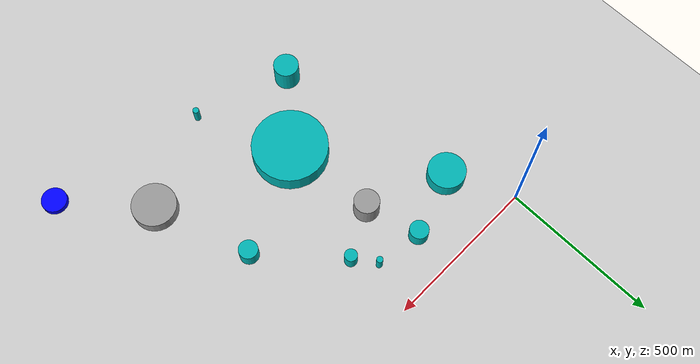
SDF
<sdf version="1.5">
 <world name="default">
  <physics type="ode">
   <ode>
    <solver><type>quick</type><iters>100</iters><sor>1.0</sor></solver>
    <constraints>
     <cfm>0.0</cfm>
     <erp>0.9</erp>
     <contact_max_correcting_vel>0.1</contact_max_correcting_vel>
     <contact_surface_layer>0.0</contact_surface_layer>
    </constraints>
   </ode>
   <real_time_update_rate>1000</real_time_update_rate>
   <max_step_size>0.0010</max_step_size>
  </physics>
  <scene>
   <sky><clouds><speed>12</speed></clouds></sky>
   <ambient>0.4 0.4 0.4 1</ambient>
   <background>0.25 0.25 0.25 1</background>
  </scene>
  <model name="ground_plane">
   <static>true</static>
   <link name="link">
    <collision name="collision">
     <geometry><plane><normal>0 0 1</normal><size>5000 5000</size></plane></geometry>
     <surface><friction><ode><mu>1</mu><mu2>1</mu2></ode></friction></surface>
    </collision>
    <visual name="runway">
     <pose>000 0 0.005 0 0 0</pose>
     <cast_shadows>false</cast_shadows>
     <geometry><plane><normal>0 0 1</normal><size>1829 45</size></plane></geometry>
     <material>
      <script><uri>file://media/materials/scripts/gazebo.material</uri><name>Gazebo/Runway</name></script>
     </material>
    </visual>
    <visual name="grass">
     <pose>0 0 -0.1 0 0 0</pose>
     <cast_shadows>false</cast_shadows>
     <geometry><plane><normal>0 0 1</normal><size>5000 5000</size></plane></geometry>
     <material>
      <script><uri>file://media/materials/scripts/gazebo.material</uri><name>Gazebo/Grass</name></script>
     </material>
    </visual>
   </link>
  </model>
  <include><uri>model://sun</uri></include>
  <model name="Obstacles">
   <static>true</static>
   <link name="Goal">
    <pose>1000 -1000 10 0 -0 0</pose>
    <collision name="collision">
     <geometry><cylinder><radius>40</radius><length>20</length></cylinder></geometry>
     <surface><friction><ode><mu>1</mu><mu2>1</mu2></ode></friction></surface>
    </collision>
    <visual name="visual">
     <geometry><cylinder><radius>40</radius><length>20</length></cylinder></geometry>
     <material>
      <lighting>1</lighting>
      <script><uri>file://media/materials/scripts/gazebo.material</uri><name>Gazebo/Grey</name></script>
      <shader type="pixel"><normal_map>__default__</normal_map></shader>
      <ambient>0.3 0.3 0.3 1</ambient>
      <diffuse>0 0.0 1.0 1</diffuse>
      <specular>0.01 0.01 0.01 1</specular>
      <emissive>0 0 0 1</emissive>
     </material>
    </visual>
   </link>
   <link name="Obs1">
    <pose>350 -300 37.5 0 -0 0</pose>
    <collision name="collision">
     <geometry><cylinder><radius>40</radius><length>75</length></cylinder></geometry>
     <surface><friction><ode><mu>1</mu><mu2>1</mu2></ode></friction></surface>
    </collision>
    <visual name="visual">
     <geometry><cylinder><radius>40</radius><length>75</length></cylinder></geometry>
     <material>
      <lighting>1</lighting>
      <script><uri>file://media/materials/scripts/gazebo.material</uri><name>Gazebo/Grey</name></script>
      <shader type="pixel"><normal_map>__default__</normal_map></shader>
      <ambient>0.3 0.3 0.3 1</ambient>
      <diffuse>0.7 0.7 0.7 1</diffuse>
      <specular>0.01 0.01 0.01 1</specular>
      <emissive>0 0 0 1</emissive>
     </material>
    </visual>
   </link>
   <link name="Obs2">
    <pose>100 -200 27.5 0 -0 0</pose>
    <collision name="collision">
     <geometry><cylinder><radius>60</radius><length>55</length></cylinder></geometry>
     <surface><friction><ode><mu>1</mu><mu2>1</mu2></ode></friction></surface>
    </collision>
    <visual name="visual">
     <geometry><cylinder><radius>60</radius><length>55</length></cylinder></geometry>
     <material>
      <lighting>1</lighting>
      <script><uri>file://media/materials/scripts/gazebo.material</uri><name>Gazebo/Grey</name></script>
      <shader type="pixel"><normal_map>__default__</normal_map></shader>
      <ambient>0.3 0.3 0.3 1</ambient>
      <diffuse>0 0.7 0.7 1</diffuse>
      <specular>0.01 0.01 0.01 1</specular>
      <emissive>0 0 0 1</emissive>
     </material>
    </visual>
   </link>
   <link name="Obs3">
    <pose>300 -130 27.5 0 -0 0</pose>
    <collision name="collision">
     <geometry><cylinder><radius>30</radius><length>55</length></cylinder></geometry>
     <surface><friction><ode><mu>1</mu><mu2>1</mu2></ode></friction></surface>
    </collision>
    <visual name="visual">
     <geometry><cylinder><radius>30</radius><length>55</length></cylinder></geometry>
     <material>
      <lighting>1</lighting>
      <script><uri>file://media/materials/scripts/gazebo.material</uri><name>Gazebo/Grey</name></script>
      <shader type="pixel"><normal_map>__default__</normal_map></shader>
      <ambient>0.3 0.3 0.3 1</ambient>
      <diffuse>0 0.7 0.7 1</diffuse>
      <specular>0.01 0.01 0.01 1</specular>
      <emissive>0 0 0 1</emissive>
     </material>
    </visual>
   </link>
   <link name="Obs4">
    <pose>500 -220 27.5 0 -0 0</pose>
    <collision name="collision">
     <geometry><cylinder><radius>20</radius><length>55</length></cylinder></geometry>
     <surface><friction><ode><mu>1</mu><mu2>1</mu2></ode></friction></surface>
    </collision>
    <visual name="visual">
     <geometry><cylinder><radius>20</radius><length>55</length></cylinder></geometry>
     <material>
      <lighting>1</lighting>
      <script><uri>file://media/materials/scripts/gazebo.material</uri><name>Gazebo/Grey</name></script>
      <shader type="pixel"><normal_map>__default__</normal_map></shader>
      <ambient>0.3 0.3 0.3 1</ambient>
      <diffuse>0 0.7 0.7 1</diffuse>
      <specular>0.01 0.01 0.01 1</specular>
      <emissive>0 0 0 1</emissive>
     </material>
    </visual>
   </link>
   <link name="Obs5">
    <pose>450 -150 27.5 0 -0 0</pose>
    <collision name="collision">
     <geometry><cylinder><radius>10</radius><length>55</length></cylinder></geometry>
     <surface><friction><ode><mu>1</mu><mu2>1</mu2></ode></friction></surface>
    </collision>
    <visual name="visual">
     <geometry><cylinder><radius>10</radius><length>55</length></cylinder></geometry>
     <material>
      <lighting>1</lighting>
      <script><uri>file://media/materials/scripts/gazebo.material</uri><name>Gazebo/Grey</name></script>
      <shader type="pixel"><normal_map>__default__</normal_map></shader>
      <ambient>0.3 0.3 0.3 1</ambient>
      <diffuse>0 0.7 0.7 1</diffuse>
      <specular>0.01 0.01 0.01 1</specular>
      <emissive>0 0 0 1</emissive>
     </material>
    </visual>
   </link>
   <link name="Obs6">
    <pose>800 -760 22.5 0 -0 0</pose>
    <collision name="collision">
     <geometry><cylinder><radius>70</radius><length>45</length></cylinder></geometry>
     <surface><friction><ode><mu>1</mu><mu2>1</mu2></ode></friction></surface>
    </collision>
    <visual name="visual">
     <geometry><cylinder><radius>70</radius><length>45</length></cylinder></geometry>
     <material>
      <lighting>1</lighting>
      <script><uri>file://media/materials/scripts/gazebo.material</uri><name>Gazebo/Grey</name></script>
      <shader type="pixel"><normal_map>__default__</normal_map></shader>
      <ambient>0.3 0.3 0.3 1</ambient>
      <diffuse>0.7 0.7 0.7 1</diffuse>
      <specular>0.01 0.01 0.01 1</specular>
      <emissive>0 0 0 1</emissive>
     </material>
    </visual>
   </link>
   <link name="Obs7">
    <pose>500 -900 27.5 0 -0 0</pose>
    <collision name="collision">
     <geometry><cylinder><radius>10</radius><length>55</length></cylinder></geometry>
     <surface><friction><ode><mu>1</mu><mu2>1</mu2></ode></friction></surface>
    </collision>
    <visual name="visual">
     <geometry><cylinder><radius>10</radius><length>55</length></cylinder></geometry>
     <material>
      <lighting>1</lighting>
      <script><uri>file://media/materials/scripts/gazebo.material</uri><name>Gazebo/Grey</name></script>
      <shader type="pixel"><normal_map>__default__</normal_map></shader>
      <ambient>0.3 0.3 0.3 1</ambient>
      <diffuse>0 0.7 0.7 1</diffuse>
      <specular>0.01 0.01 0.01 1</specular>
      <emissive>0 0 0 1</emissive>
     </material>
    </visual>
   </link>
   <link name="Obs8">
    <pose>380 -600 32.5 0 -0 0</pose>
    <collision name="collision">
     <geometry><cylinder><radius>120</radius><length>65</length></cylinder></geometry>
     <surface><friction><ode><mu>1</mu><mu2>1</mu2></ode></friction></surface>
    </collision>
    <visual name="visual">
     <geometry><cylinder><radius>120</radius><length>65</length></cylinder></geometry>
     <material>
      <lighting>1</lighting>
      <script><uri>file://media/materials/scripts/gazebo.material</uri><name>Gazebo/Grey</name></script>
      <shader type="pixel"><normal_map>__default__</normal_map></shader>
      <ambient>0.3 0.3 0.3 1</ambient>
      <diffuse>0 0.7 0.7 1</diffuse>
      <specular>0.01 0.01 0.01 1</specular>
      <emissive>0 0 0 1</emissive>
     </material>
    </visual>
   </link>
   <link name="Obs9">
    <pose>700 -450 27.5 0 -0 0</pose>
    <collision name="collision">
     <geometry><cylinder><radius>30</radius><length>55</length></cylinder></geometry>
     <surface><friction><ode><mu>1</mu><mu2>1</mu2></ode></friction></surface>
    </collision>
    <visual name="visual">
     <geometry><cylinder><radius>30</radius><length>55</length></cylinder></geometry>
     <material>
      <lighting>1</lighting>
      <script><uri>file://media/materials/scripts/gazebo.material</uri><name>Gazebo/Grey</name></script>
      <shader type="pixel"><normal_map>__default__</normal_map></shader>
      <ambient>0.3 0.3 0.3 1</ambient>
      <diffuse>0 0.7 0.7 1</diffuse>
      <specular>0.01 0.01 0.01 1</specular>
      <emissive>0 0 0 1</emissive>
     </material>
    </visual>
   </link>
   <link name="Obs10">
    <pose>200 -800 42.5 0 -0 0</pose>
    <collision name="collision">
     <geometry><cylinder><radius>40</radius><length>85</length></cylinder></geometry>
     <surface><friction><ode><mu>1</mu><mu2>1</mu2></ode></friction></surface>
    </collision>
    <visual name="visual">
     <geometry><cylinder><radius>40</radius><length>85</length></cylinder></geometry>
     <material>
      <lighting>1</lighting>
      <script><uri>file://media/materials/scripts/gazebo.material</uri><name>Gazebo/Grey</name></script>
      <shader type="pixel"><normal_map>__default__</normal_map></shader>
      <ambient>0.3 0.3 0.3 1</ambient>
      <diffuse>0 0.7 0.7 1</diffuse>
      <specular>0.01 0.01 0.01 1</specular>
      <emissive>0 0 0 1</emissive>
     </material>
    </visual>
   </link>
  </model>
 </world>
</sdf>
